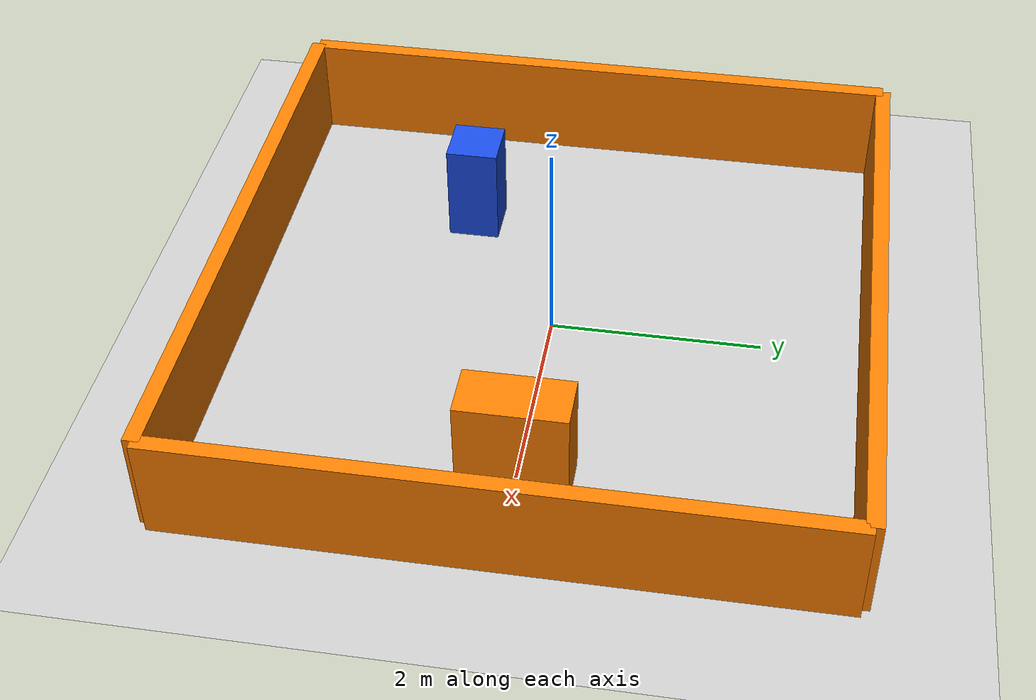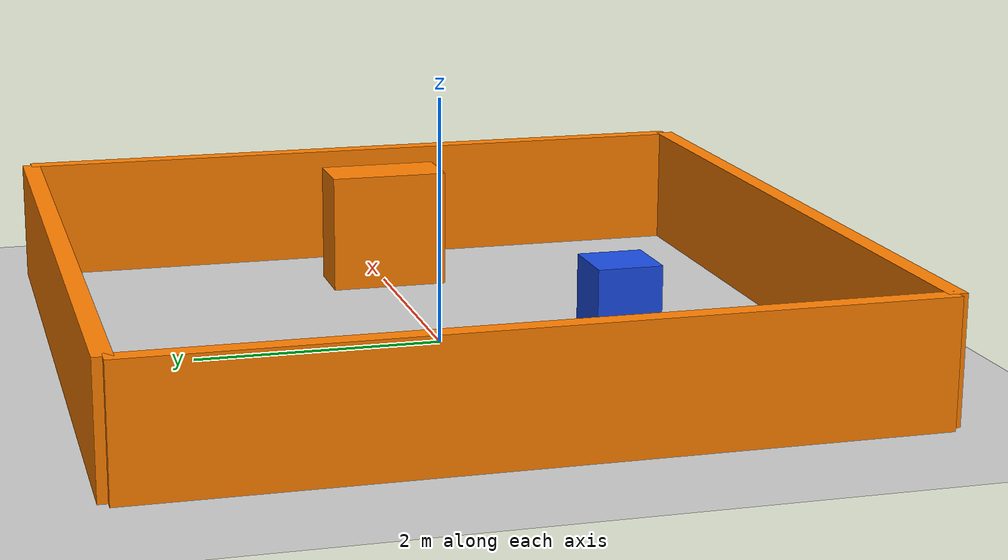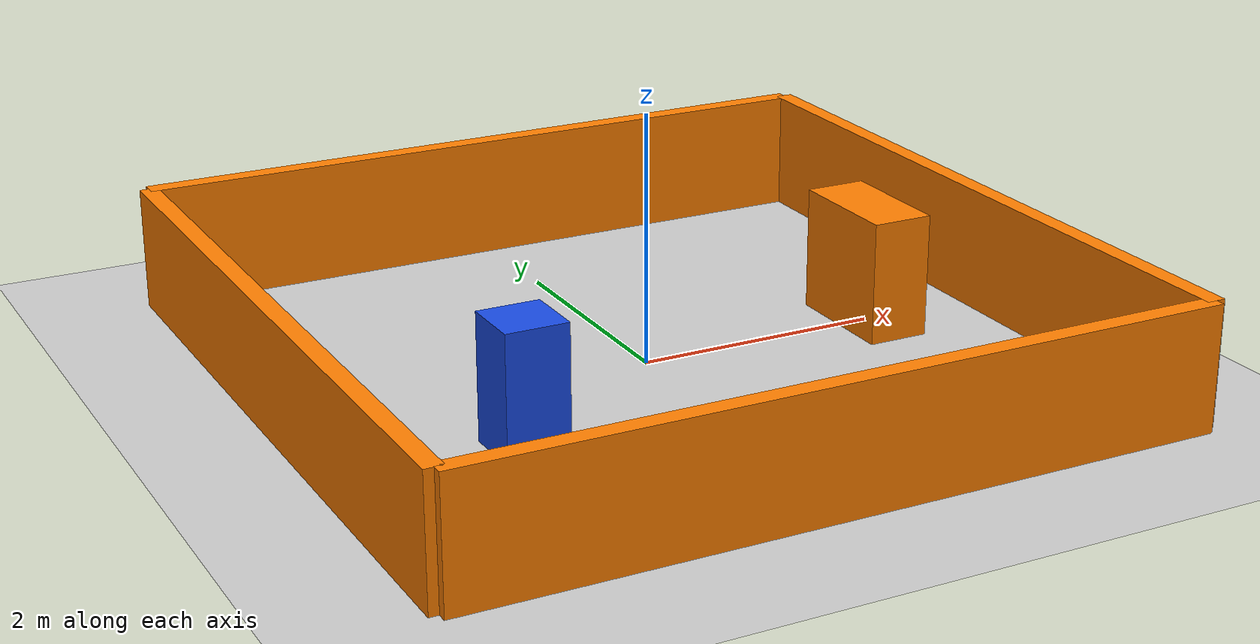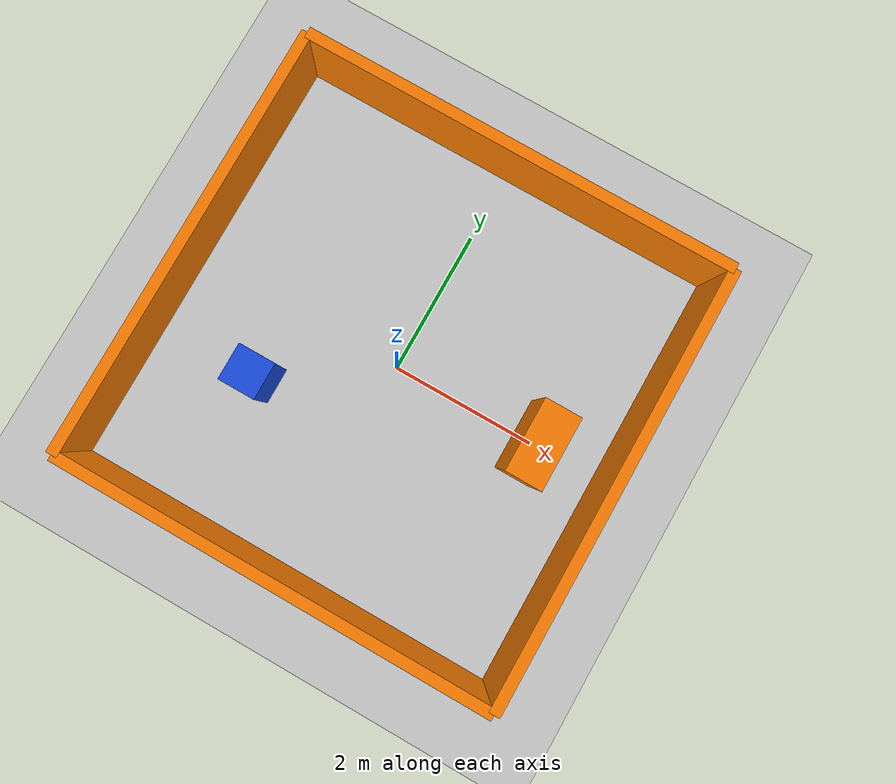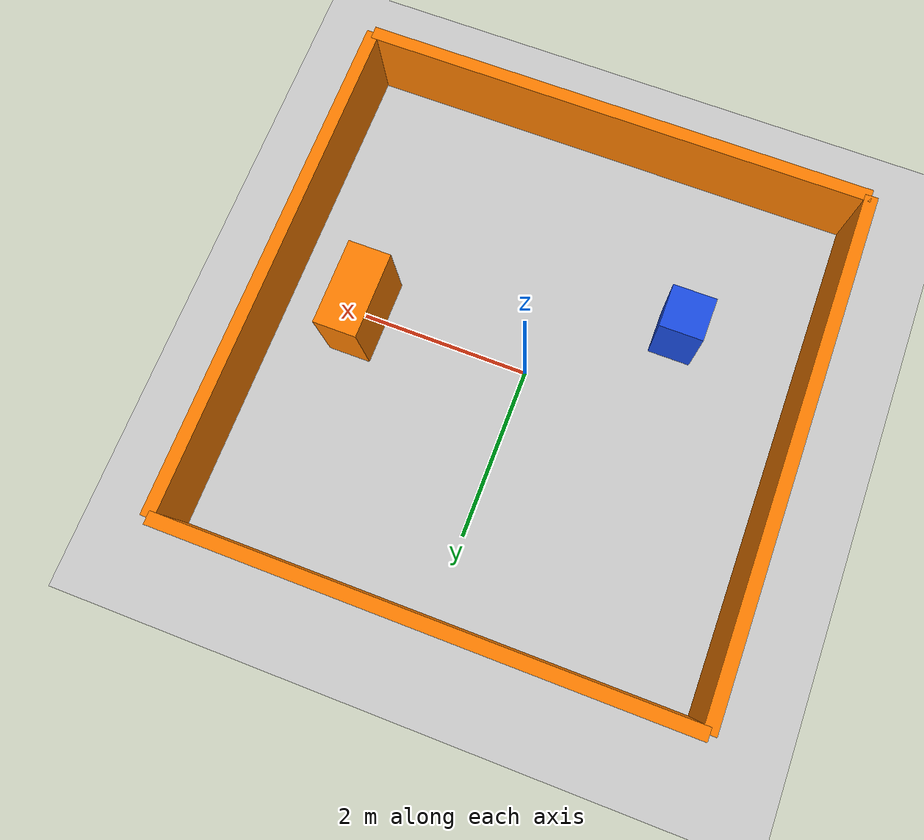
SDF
<?xml version="1.0" ?>
<sdf version="1.6">
  <world name="campus_world">
    <physics name="1ms" type="ignored">
      <max_step_size>0.001</max_step_size>
      <real_time_factor>1.0</real_time_factor>
    </physics>
    <plugin
        filename="ignition-gazebo-sensors-system"
        name="gz::sim::systems::Sensors">
    <render_engine>ogre2</render_engine>
    </plugin>
    <plugin
      filename="ignition-gazebo-physics-system"
      name="gz::sim::systems::Physics">
    </plugin>
    <plugin
      filename="ignition-gazebo-user-commands-system"
      name="gz::sim::systems::UserCommands">
    </plugin>
    <plugin
      filename="ignition-gazebo-scene-broadcaster-system"
      name="gz::sim::systems::SceneBroadcaster">
    </plugin>
    <plugin
      filename="ignition-gazebo-contact-system"
      name="gz::sim::systems::Contact">
    </plugin>

    <light type="directional" name="sun">
      <cast_shadows>true</cast_shadows>
      <pose>0 0 10 0 0 0</pose>
      <diffuse>0.8 0.8 0.8 1</diffuse>
      <specular>0.2 0.2 0.2 1</specular>
      <attenuation>
        <range>1000</range>
        <constant>0.9</constant>
        <linear>0.01</linear>
        <quadratic>0.001</quadratic>
      </attenuation>
      <direction>-0.5 0.1 -0.9</direction>
    </light>

    <model name="front_obstacle">
        <static>true</static>

   <pose>2.0 0.0 0.5 0 0 0</pose>

    <link name="obstacle_link">
      <collision name="obstacle_collision">
        <geometry>
          <box>
            <size>0.5 1.0 1.0</size>
          </box>
        </geometry>
      </collision>

      <visual name="obstacle_visual">
        <geometry>
          <box>
            <size>0.5 1.0 1.0</size>
          </box>
        </geometry>

        <material>
          <ambient>1.0 0.5 0.0 1.0</ambient>
          <diffuse>1.0 0.5 0.0 1.0</diffuse>
        </material>
      </visual>
    </link>
    </model>
    <model name="north_wall">
        <static>true</static>
    <pose>0 3 0.5 0 0 0</pose>
    <link name="wall_link">
        <collision name="wall_collision">
         <geometry>
             <box>
                 <size>6 0.15 1</size>
             </box>
         </geometry>
     </collision>
     <visual name="wall_visual">
         <geometry>
             <box>
                 <size>6 0.15 1</size>
             </box>
         </geometry>
        <material>
            <ambient>1.0 0.5 0.0 1.0</ambient>
            <diffuse>1.0 0.5 0.0 1.0</diffuse>
        </material>
      </visual>
    </link>
</model>
    <model name="south_wall">
        <static>true</static>
    <pose>0 -3 0.5 0 0 0</pose>
    <link name="wall_link">
        <collision name="wall_collision">
         <geometry>
             <box>
                 <size>6 0.15 1</size>
             </box>
         </geometry>
     </collision>
     <visual name="wall_visual">
         <geometry>
             <box>
                 <size>6 0.15 1</size>
             </box>
         </geometry>
        <material>
            <ambient>1.0 0.5 0.0 1.0</ambient>
            <diffuse>1.0 0.5 0.0 1.0</diffuse>
        </material>
      </visual>
    </link>
</model>
    <model name="east_wall">
        <static>true</static>
    <pose>3 0 0.5 0 0 0</pose>
    <link name="wall_link">
        <collision name="wall_collision">
         <geometry>
             <box>
                 <size>0.15 6 1</size>
             </box>
         </geometry>
     </collision>
     <visual name="wall_visual">
         <geometry>
             <box>
                 <size>0.15 6 1</size>
             </box>
         </geometry>
        <material>
            <ambient>1.0 0.5 0.0 1.0</ambient>
            <diffuse>1.0 0.5 0.0 1.0</diffuse>
        </material>
      </visual>
    </link>
</model>
    <model name="west_wall">
        <static>true</static>
    <pose>-3 0 0.5 0 0 0</pose>
    <link name="wall_link">
        <collision name="wall_collision">
         <geometry>
             <box>
                 <size>0.15 6 1</size>
             </box>
         </geometry>
     </collision>
     <visual name="wall_visual">
         <geometry>
             <box>
                 <size>0.15 6 1</size>
             </box>
         </geometry>
        <material>
            <ambient>1.0 0.5 0.0 1.0</ambient>
            <diffuse>1.0 0.5 0.0 1.0</diffuse>
        </material>
      </visual>
    </link>
</model>
    <model name="landmark_pillar">
        <static>true</static>
    <pose>-1.5 -1.0 0.5 0 0 0</pose>
    <link name="pillar_link">
        <collision name="pillar_collision">
         <geometry>
             <box>
                 <size>0.5 0.5 1.0</size>
             </box>
         </geometry>
     </collision>
     <visual name="pillar_visual">
         <geometry>
             <box>
                 <size>0.5 0.5 1.0</size>
             </box>
         </geometry>
        <material>
            <ambient>0.1 0.3 0.9 1.0</ambient>
            <diffuse>0.1 0.3 0.9 1.0</diffuse>
        </material>
      </visual>
    </link>
</model>

<model name="ground_plane">
      <static>true</static>
      <link name="link">
        <collision name="collision">
          <geometry>
            <plane>
              <normal>0 0 1</normal>
              <size>100 100</size>
            </plane>
          </geometry>
        </collision>
        <visual name="visual">
          <geometry>
            <plane>
              <normal>0 0 1</normal>
              <size>100 100</size>
            </plane>
          </geometry>
          <material>
            <ambient>0.8 0.8 0.8 1</ambient>
            <diffuse>0.8 0.8 0.8 1</diffuse>
            <specular>0.8 0.8 0.8 1</specular>
          </material>
        </visual>
      </link>
    </model>

  </world>
</sdf>
